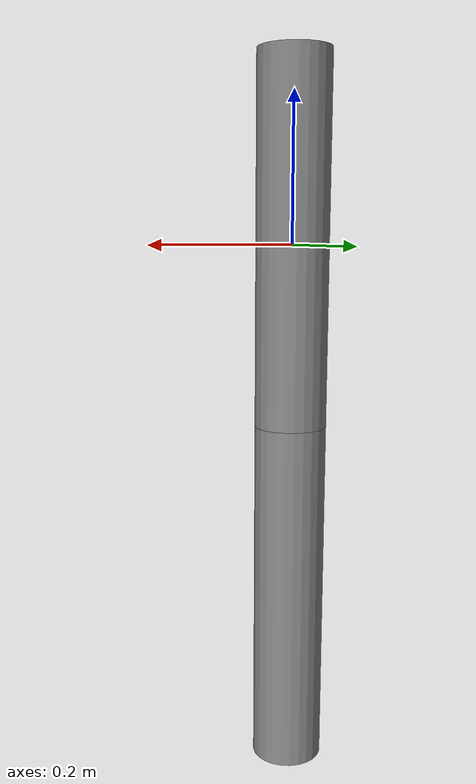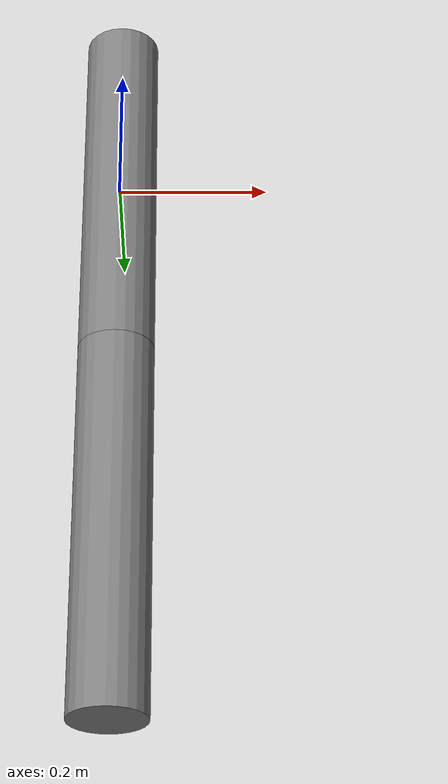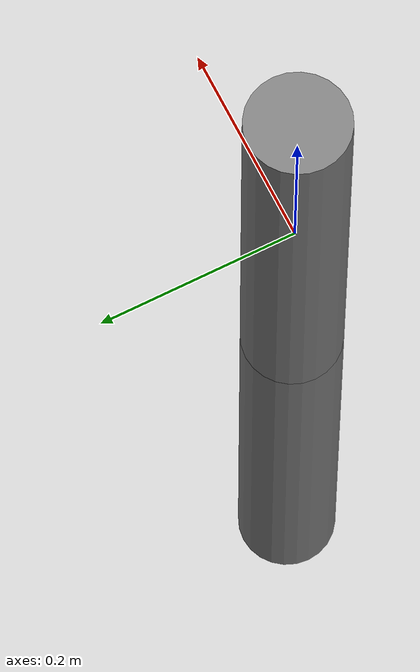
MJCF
<mujoco model="simple_leg">
  <compiler angle="radian"/>

  <worldbody>
    <geom size="0.02"/>
    <body name="thigh_link">
      <inertial pos="0 0 0" mass="1" diaginertia="0.001 0.001 0.001"/>
      <joint name="hip_joint" pos="0 0 0" axis="0 1 0" range="-1.05 1.05" actuatorfrcrange="-100 100"/>
      <geom size="0.05 0.25" type="cylinder"/>
      <body name="shin_link" pos="0 0 -0.5">
        <inertial pos="0 0 0" mass="1" diaginertia="0.001 0.001 0.001"/>
        <joint name="knee_joint" pos="0 0 0" axis="0 1 0" range="-1.57 0" actuatorfrcrange="-100 100"/>
        <geom size="0.05 0.25" type="cylinder"/>
      </body>
    </body>
  </worldbody>
</mujoco>
